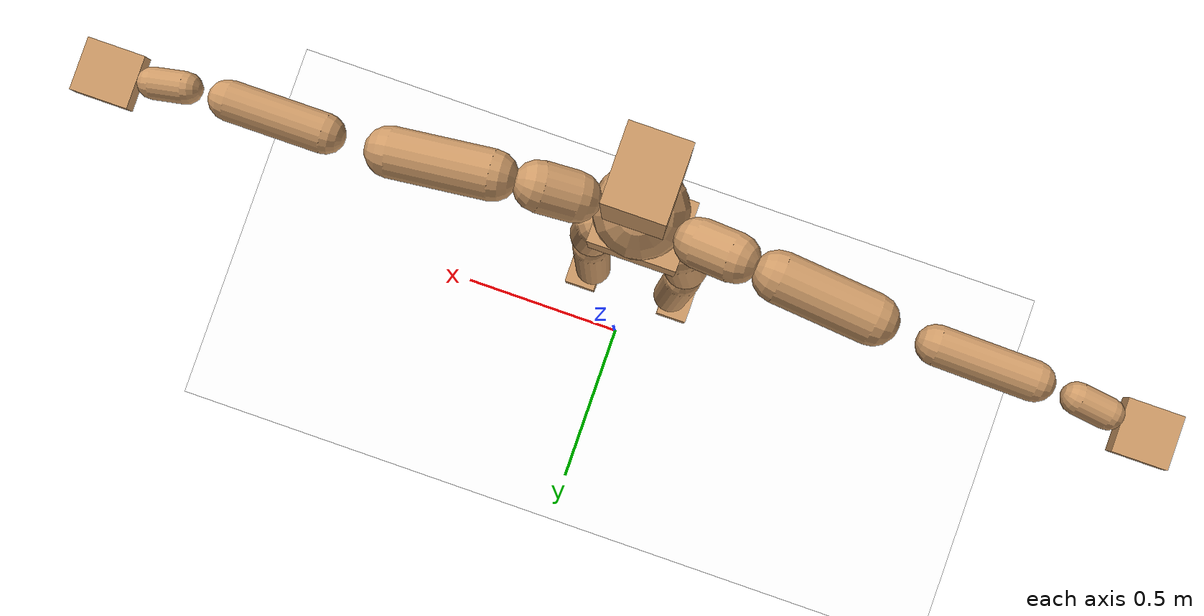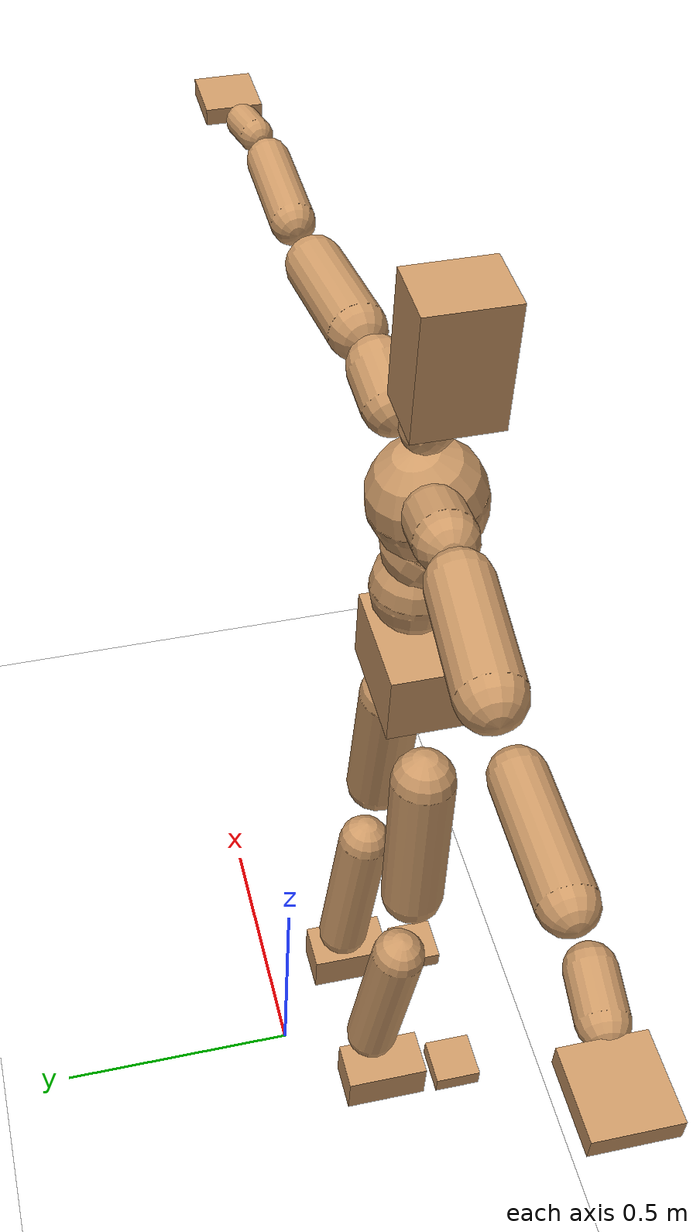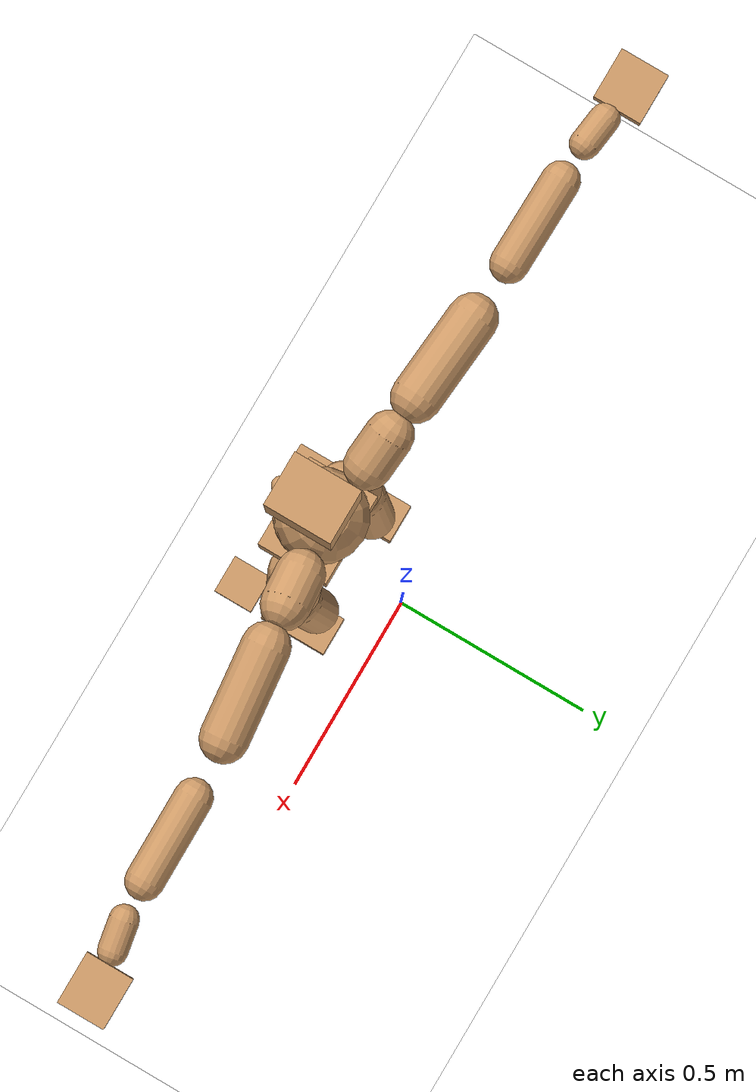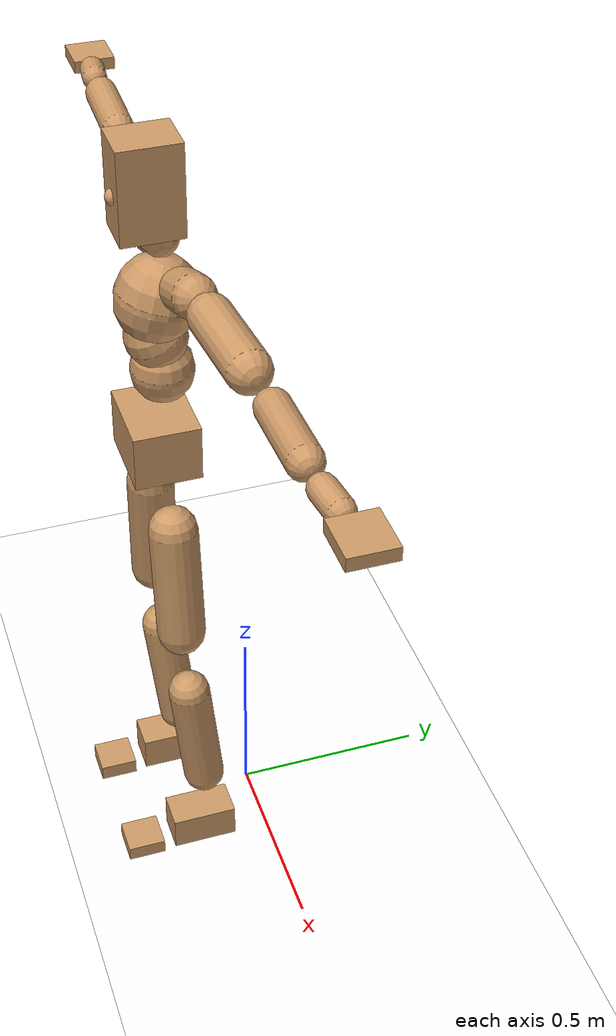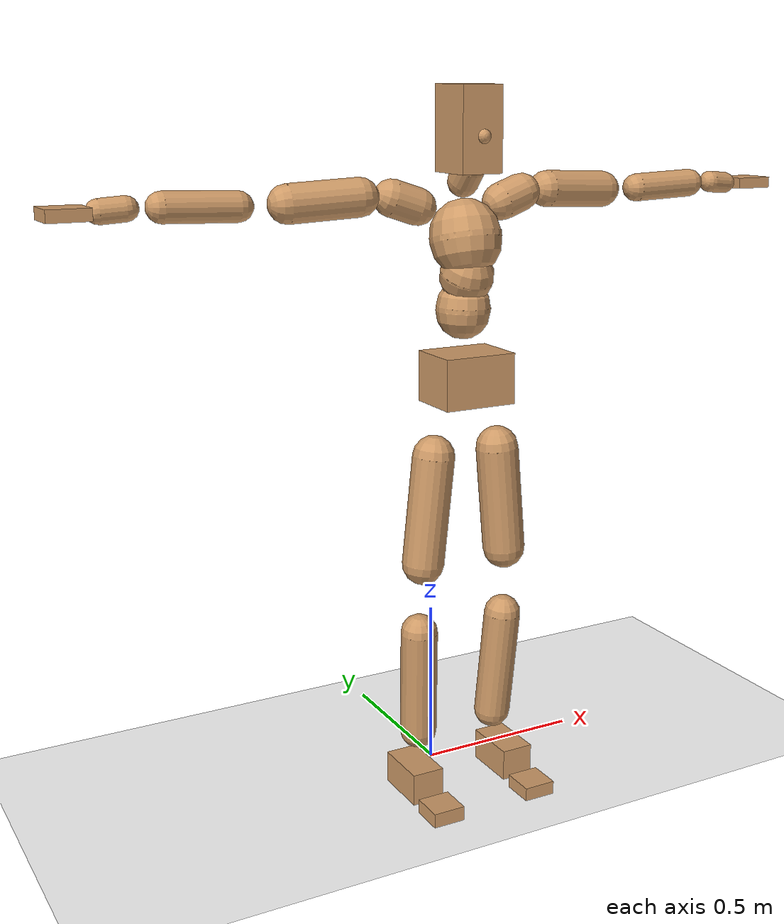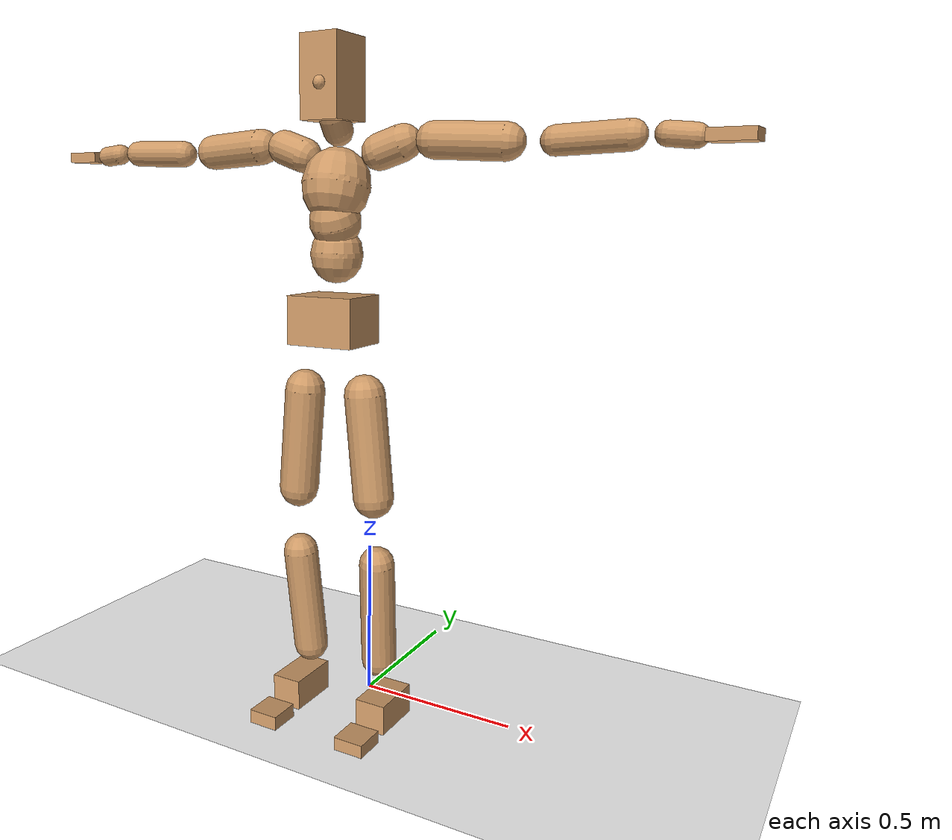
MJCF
<mujoco model="humanoid">
  <option integrator="implicitfast" />

  <visual>
    <global offwidth="1280" offheight="960" />
    <headlight active="1" ambient="0.34 0.34 0.34" diffuse="0.5 0.5 0.5" />
  </visual>

  <default>
    <joint damping="2" stiffness="2" armature="0.01" limited="true" solimplimit="0 .99 .01" />
    <geom condim="1" friction="0.7 0.005 0.0001" solimp=".99 .99 .003" solref="0.015 1" margin="0.001" rgba="0.8 0.6 .4 1" />
    <default class="smplcontact">
      <geom condim="3" friction="1. 0.005 0.0001" solref="0.015 1" solimp="0.98 0.98 0.001" priority="1" />
    </default>
    <default class="stiff_medium">
      <joint stiffness="10" />
    </default>
    <default class="stiff_medium_higher">
      <joint stiffness="50" />
    </default>
    <default class="stiff_high">
      <joint stiffness="100" />
    </default>
  </default>

  <asset>
    <texture type="skybox" builtin="gradient" rgb1="0.99 0.99 0.99" rgb2="0.608 0.828 0.892" width="100" />
    <texture builtin="flat" height="1278" mark="cross" markrgb="1 1 1" name="texgeom" random="0.01" rgb1="0.8 0.6 0.4" rgb2="0.8 0.6 0.4" type="cube" width="127" />
    <texture name="texplane" type="2d" builtin="checker" markrgb="1 1 1" rgb1="0.756 0.772 0.76" rgb2="0.6 0.6 0.6" width="100" height="100" />
    <material name="MatPlane" reflectance="0.5" texture="texplane" texrepeat="1 1" texuniform="true" />
    <material name="geom" texture="texgeom" texuniform="true" />
  </asset>

  <worldbody>
    <light name="tracking_light" pos="0 0 7" dir="0 0 -1" directional="true" cutoff="100" exponent="1" diffuse="1 1 1" specular="0.1 0.1 0.1" mode="trackcom" />
    <camera name="back" pos="0 3 2.4" xyaxes="-1 0 0 0 -1 2" mode="trackcom" />
    <camera name="side" pos="-3 0 2.4" xyaxes="0 -1 0 1 0 2" mode="trackcom" />
    <camera name="front_side" pos="-2.8 -2.8 0.8" xyaxes="0.5 -0.5 0 0.1 0.1 1" mode="trackcom" />
    <geom condim="3" name="floor" pos="0 0 0" rgba="1 1 1 1" size="100 100 .2" type="plane" material="MatPlane" />
    <body name="Pelvis" pos="-0.0018 -0.2233 1.27986" euler="90 0 0">
      <site name="Pelvis" size="0.01" />
      <freejoint name="Pelvis" />
      <geom type="box" pos="-0.0000 -0.0121 -0.0055" size="0.1069 0.0722 0.083" quat="1.0000 0.0000 0.0000 0.0000" density="3165.830099" name="Pelvis" />
      <body name="L_Hip" pos="0.0955625 -0.125675 -0.00935">
        <joint name="L_Hip_x" type="hinge" pos="0 0 0" axis="1 0 0" stiffness="17.19824030612245" range="-160.0 22.92" class="stiff_medium" damping="29.629361290924336" armature="0.022687051049198843"/>
        <joint name="L_Hip_y" type="hinge" pos="0 0 0" axis="0 1 0" stiffness="17.095561632653062" range="-70.0 70.0" class="stiff_medium" damping="16.759236135916314" armature="0.016429527259457143"/>
        <joint name="L_Hip_z" type="hinge" pos="0 0 0" axis="0 0 1" stiffness="17.10435142857143" range="-28.65 90.0" class="stiff_medium" damping="19.70284147196181" armature="0.022696093663089646"/>
        <geom type="capsule" density="2040.816327" fromto="0.0094875 -0.103125 -0.0012375 0.037675 -0.412775 -0.00495" size="0.0615" name="L_Hip" />
        <body name="L_Knee" pos="0.0471625 -0.5159 -0.0061875">
          <joint name="L_Knee_x" type="hinge" pos="0 0 0" axis="1 0 0" range="-5.16 171.89" damping="15.062760794577" armature="0.021343797365827893" stiffness="3.321907163265306"/>
          <joint name="L_Knee_y" type="hinge" pos="0 0 0" axis="0 1 0" range="-4.58 6.88" damping="12.945965232871579" armature="0.015441578364462116" stiffness="3.3917763265306125"/>
          <joint name="L_Knee_z" type="hinge" pos="0 0 0" axis="0 0 1" range="-6.88 4.58" damping="15.006918060065544" armature="0.02138423024615954" stiffness="3.2910874489795923"/>
          <geom type="capsule" density="1234.567901" fromto="-0.0037125 -0.10945 -0.0119625 -0.0149875 -0.4378 -0.048125" size="0.0541" name="L_Knee" />
          <body name="L_Ankle" pos="-0.0187 -0.54725 -0.0600875">
            <joint name="L_Ankle_x" type="hinge" pos="0 0 0" axis="1 0 0" range="-45.84 45.84" class="stiff_medium" damping="8.859849432432517" armature="0.015857944517404413" stiffness="13.750018673469388"/>
            <joint name="L_Ankle_y" type="hinge" pos="0 0 0" axis="0 1 0" range="-74.48 22.92" class="stiff_medium" damping="4.399379468505369" armature="0.015640018623433526" stiffness="13.750011836734695"/>
            <joint name="L_Ankle_z" type="hinge" pos="0 0 0" axis="0 0 1" range="-4.58 4.58" class="stiff_medium" damping="8.387836414113961" armature="0.014213292870694172" stiffness="13.75"/>
            <geom type="box" pos="0.0320375 -0.0328625 0.033275" size="0.0483 0.0464 0.085" quat="1.0000 0.0000 0.0000 0.0000" density="449.071558" name="L_Ankle" class="smplcontact" />
            <body name="L_Toe" pos="0.0363 -0.076725 0.164038">
              <joint name="L_Toe_x" type="hinge" pos="0 0 0" axis="1 0 0" range="-91.67 22.92" armature="0.013386048586154416" damping="2.713360779989445" stiffness="2.75"/>
              <joint name="L_Toe_y" type="hinge" pos="0 0 0" axis="0 1 0" range="-4.58 4.58" armature="0.01238574458658927" damping="2.610011402776643" stiffness="2.75"/>
              <joint name="L_Toe_z" type="hinge" pos="0 0 0" axis="0 0 1" range="-4.58 4.58" armature="0.010363183740586208" damping="2.387415141386687" stiffness="2.75"/>
              <geom type="box" pos="-0.004125 0.0075625 0.0341" size="0.0478 0.02 0.0496" quat="1.0000 0.0000 0.0000 0.0000" density="423.206892" name="L_Toe" class="smplcontact" />
            </body>
          </body>
        </body>
      </body>
      <body name="R_Hip" pos="-0.0930875 -0.124437 -0.0059125">
        <joint name="R_Hip_x" type="hinge" pos="0 0 0" axis="1 0 0" stiffness="17.19824030612245" range="-160.0 22.92" class="stiff_medium" damping="29.629361290924336" armature="0.022687051049198843"/>
        <joint name="R_Hip_y" type="hinge" pos="0 0 0" axis="0 1 0" stiffness="17.095561632653062" range="-70.0 70.0" class="stiff_medium" damping="16.759236135916314" armature="0.016429527259457143"/>
        <joint name="R_Hip_z" type="hinge" pos="0 0 0" axis="0 0 1" stiffness="17.10435142857143" range="-90.0 28.65" class="stiff_medium" damping="19.70284147196181" armature="0.022696093663089646"/>
        <geom type="capsule" density="2040.816327" fromto="-0.0105875 -0.105188 -0.002475 -0.042075 -0.420887 -0.0097625" size="0.0606" name="R_Hip" />
        <body name="R_Knee" pos="-0.0526625 -0.526075 -0.0122375">
          <joint name="R_Knee_x" type="hinge" pos="0 0 0" axis="1 0 0" range="-5.16 171.89" damping="15.062760794577" armature="0.021343797365827893" stiffness="3.321907163265306"/>
          <joint name="R_Knee_y" type="hinge" pos="0 0 0" axis="0 1 0" range="-6.88 4.58" damping="12.945965232871579" armature="0.015441578364462116" stiffness="3.3917763265306125"/>
          <joint name="R_Knee_z" type="hinge" pos="0 0 0" axis="0 0 1" range="-4.58 6.88" damping="15.006918060065544" armature="0.02138423024615954" stiffness="3.2910874489795923"/>
          <geom type="capsule" density="1234.567901" fromto="0.0044 -0.109587 -0.0116875 0.017325 -0.438213 -0.046475" size="0.0541" name="R_Knee" />
          <body name="R_Ankle" pos="0.021725 -0.5478 -0.0581625">
            <joint name="R_Ankle_x" type="hinge" pos="0 0 0" axis="1 0 0" range="-45.84 45.84" class="stiff_medium" damping="8.859849432432517" armature="0.015857944517404413" stiffness="13.750018673469388"/>
            <joint name="R_Ankle_y" type="hinge" pos="0 0 0" axis="0 1 0" range="-22.92 74.48" class="stiff_medium" damping="4.399379468505369" armature="0.015640018623433526" stiffness="13.750011836734695"/>
            <joint name="R_Ankle_z" type="hinge" pos="0 0 0" axis="0 0 1" range="-4.58 4.58" class="stiff_medium" damping="8.387836414113961" armature="0.014213292870694172" stiffness="13.75"/>
            <geom type="box" pos="-0.02915 -0.023925 0.0352" size="0.0483 0.0478 0.0865" quat="1.0000 0.0000 0.0000 0.0000" density="434.700981" name="R_Ankle" class="smplcontact" />
            <body name="R_Toe" pos="-0.034925 -0.0661375 0.169538">
              <joint name="R_Toe_x" type="hinge" pos="0 0 0" axis="1 0 0" range="-91.67 22.92" armature="0.013386048586154416" damping="2.713360779989445" stiffness="2.75"/>
              <joint name="R_Toe_y" type="hinge" pos="0 0 0" axis="0 1 0" range="-4.58 4.58" armature="0.01238574458658927" damping="2.610011402776643" stiffness="2.75"/>
              <joint name="R_Toe_z" type="hinge" pos="0 0 0" axis="0 0 1" range="-4.58 4.58" armature="0.010363183740586208" damping="2.387415141386687" stiffness="2.75"/>
              <geom type="box" pos="0.005775 0.0061875 0.0312125" size="0.0479 0.0216 0.0493" quat="1.0000 0.0000 0.0000 0.0000" density="407.384095" name="R_Toe" class="smplcontact" />
            </body>
          </body>
        </body>
      </body>
      <body name="Torso" pos="-0.0025 0.109 -0.0267">
        <joint name="Torso_x" type="hinge" pos="0 0 0" axis="1 0 0" range="-25.78 57.3" class="stiff_medium" damping="16.944789177371323" armature="0.011576079564418829" stiffness="11.023723673469387"/>
        <joint name="Torso_y" type="hinge" pos="0 0 0" axis="0 1 0" range="-57.3 57.3" class="stiff_high" damping="29.11508756713538" armature="0.01937626790595332" stiffness="109.37198124999998"/>
        <joint name="Torso_z" type="hinge" pos="0 0 0" axis="0 0 1" range="-34.38 34.38" class="stiff_high" damping="24.640771515328712" armature="0.014228244849331769" stiffness="106.68350652173912"/>
        <geom type="capsule" density="2040.816327" fromto="0.0025 0.0608 0.0005 0.003 0.0743 0.0006" size="0.0769" name="Torso" />
        <body name="Spine" pos="0.0055 0.1352 0.0011">
          <joint name="Spine_x" type="hinge" pos="0 0 0" axis="1 0 0" stiffness="11.23382224489796" range="-25.78 57.3" class="stiff_medium" damping="17.41106230963078" armature="0.011993349058515354"/>
          <joint name="Spine_y" type="hinge" pos="0 0 0" axis="0 1 0" stiffness="11.67224088888889" range="-57.3 57.3" class="stiff_high" damping="12.051053820080998" armature="0.01944087626855341"/>
          <joint name="Spine_z" type="hinge" pos="0 0 0" axis="0 0 1" stiffness="22.9563125" range="-34.38 34.38" class="stiff_high" damping="16.317554444807215" armature="0.016109257231005373"/>
          <geom type="capsule" density="2040.816327" fromto="0.0007 0.0238 0.0114 0.0008 0.0291 0.014" size="0.0755" name="Spine" />
          <body name="Chest" pos="0.0015 0.0529 0.0254">
            <joint name="Chest_x" type="hinge" pos="0 0 0" axis="1 0 0" stiffness="11.776115531914895" range="-25.78 57.3" class="stiff_medium" damping="18.021102303759772" armature="0.012256829035287797"/>
            <joint name="Chest_y" type="hinge" pos="0 0 0" axis="0 1 0" stiffness="13.448267333333334" range="-57.3 57.3" class="stiff_high" damping="12.937740431789003" armature="0.019447803587290643"/>
            <joint name="Chest_z" type="hinge" pos="0 0 0" axis="0 0 1" stiffness="23.267014782608697" range="-34.38 34.38" class="stiff_high" damping="16.847528832624963" armature="0.016943348915127984"/>
            <geom type="capsule" density="2040.816327" fromto="-0.0009 0.0682 -0.0173 -0.001 0.0833 -0.0212" size="0.1002" name="Chest" />
            <body name="Neck" pos="-0.0028 0.2139 -0.0429">
              <joint name="Neck_x" type="hinge" pos="0 0 0" axis="1 0 0" range="-28.65 57.3" class="stiff_medium_higher" damping="10.000000000000004" armature="0.010000000000000009" stiffness="50.0"/>
              <joint name="Neck_y" type="hinge" pos="0 0 0" axis="0 1 0" range="-40.11 40.11" class="stiff_medium_higher" damping="10.0" armature="0.01" stiffness="50.0"/>
              <joint name="Neck_z" type="hinge" pos="0 0 0" axis="0 0 1" range="-40.11 40.11" class="stiff_medium_higher" damping="10.000000000000004" armature="0.010000000000000009" stiffness="50.0"/>
              <geom type="capsule" density="1000" fromto="0.001 0.013 0.0103 0.0041 0.052 0.0411" size="0.0436" name="Neck" />
              <body name="Head" pos="0.0052 0.065 0.0513">
                <joint name="Head_x" type="hinge" pos="0 0 0" axis="1 0 0" range="-28.65 57.3" class="stiff_medium_higher" damping="1.9999999999999991" armature="0.009999999999999992" stiffness="50.0"/>
                <joint name="Head_y" type="hinge" pos="0 0 0" axis="0 1 0" range="-40.11 40.11" class="stiff_medium_higher" damping="1.9999999999999998" armature="0.009999999999999998" stiffness="50.0"/>
                <joint name="Head_z" type="hinge" pos="0 0 0" axis="0 0 1" range="-40.11 40.11" class="stiff_medium_higher" damping="1.999999999999998" armature="0.009999999999999981" stiffness="50.0"/>
                <geom type="box" pos="-0.0042 0.0876 -0.0116" size="0.0606 0.1154 0.076" quat="1.0000 0.0000 0.0000 0.0000" density="1018.069894" name="Head" />
                <geom type="capsule" name="nose" size="0.02 0.01" pos="0 0.07 0.05" quat="1 0 0 0" mass="0" contype="0" conaffinity="0" />
              </body>
            </body>
            <body name="L_Thorax" pos="0.10244 0.15821 -0.04433">
              <joint name="L_Thorax_x" type="hinge" pos="0 0 0" axis="1 0 0" range="-10.89 4.58" class="stiff_medium_higher" damping="31.589735797957683" armature="0.016223873504270125" stiffness="76.88603214285715"/>
              <joint name="L_Thorax_y" type="hinge" pos="0 0 0" axis="0 1 0" range="-28.65 17.19" class="stiff_medium_higher" damping="34.89989559971406" armature="0.01967496307175568" stiffness="77.38278265306123"/>
              <joint name="L_Thorax_z" type="hinge" pos="0 0 0" axis="0 0 1" range="-31.51 40.11" class="stiff_medium_higher" damping="34.901462278801546" armature="0.019678125977203677" stiffness="77.37729132653061"/>
              <geom type="capsule" density="1000" fromto="0.02366 0.00793 -0.00234 0.09464 0.03172 -0.00923" size="0.0521" name="L_Thorax" />
              <body name="L_Shoulder" pos="0.1183 0.03965 -0.01157">
                <joint name="L_Shoulder_x" type="hinge" pos="0 0 0" axis="1 0 0" range="-97.4 97.4" class="stiff_medium" damping="9.029989056678895" armature="0.014800063709013688" stiffness="15.304120000000001"/>
                <joint name="L_Shoulder_y" type="hinge" pos="0 0 0" axis="0 1 0" range="-108.86 80.21" class="stiff_medium" damping="10.416659800941957" armature="0.019521721968520908" stiffness="15.439610408163267"/>
                <joint name="L_Shoulder_z" type="hinge" pos="0 0 0" axis="0 0 1" range="-97.4 85.94" class="stiff_medium" damping="10.414978319288073" armature="0.019525527681653096" stiffness="15.431617857142857"/>
                <geom type="capsule" density="1000" fromto="0.06747 -0.00338 -0.00715 0.27001 -0.01326 -0.0286" size="0.0517" name="L_Shoulder" />
                <body name="L_Elbow" pos="0.33748 -0.01664 -0.03575">
                  <joint name="L_Elbow_x" type="hinge" pos="0 0 0" axis="1 0 0" range="-17.19 4.58" damping="6.893935965131499" armature="0.012655354053031634" stiffness="3.0043475918367353"/>
                  <joint name="L_Elbow_y" type="hinge" pos="0 0 0" axis="0 1 0" range="-180.0 17.19" damping="8.400044856786575" armature="0.018780901424265504" stiffness="3.005638632653061"/>
                  <joint name="L_Elbow_z" type="hinge" pos="0 0 0" axis="0 0 1" range="-100.84 4.58" damping="8.401427491655662" armature="0.018800821954664825" stiffness="3.003442469387755"/>
                  <geom type="capsule" density="1000" fromto="0.06474 0.00234 -0.00026 0.25922 0.00936 -0.00117" size="0.0405" name="L_Elbow" />
                  <body name="L_Wrist" pos="0.32396 0.0117 -0.00156">
                    <joint name="L_Wrist_x" type="hinge" pos="0 0 0" axis="1 0 0" range="-180.0 22.92" armature="0.0122903279417272" damping="2.5957833940278108" stiffness="2.7412171020408165"/>
                    <joint name="L_Wrist_y" type="hinge" pos="0 0 0" axis="0 1 0" range="-17.19 17.19" armature="0.01653060809261114" damping="3.021806412761196" stiffness="2.7619413469387752"/>
                    <joint name="L_Wrist_z" type="hinge" pos="0 0 0" axis="0 0 1" range="-22.92 22.92" armature="0.01676100149056547" damping="3.038183618728733" stiffness="2.7535823877551024"/>
                    <geom type="capsule" density="1000" fromto="0.02184 -0.00208 -0.0039 0.08736 -0.00845 -0.0156" size="0.0318" name="L_Wrist" class="smplcontact" />
                    <body name="L_Hand" pos="0.1092 -0.01066 -0.01937">
                      <joint name="L_Hand_x" type="hinge" pos="0 0 0" axis="1 0 0" range="-17.19 17.19" armature="0.010300606507591596" damping="2.314371487887722" stiffness="2.5999999999999996"/>
                      <joint name="L_Hand_y" type="hinge" pos="0 0 0" axis="0 1 0" range="-51.57 51.57" armature="0.013635420978089337" damping="2.6627840521917006" stiffness="2.5999999999999996"/>
                      <joint name="L_Hand_z" type="hinge" pos="0 0 0" axis="0 0 1" range="-91.67 91.67" armature="0.014524361339041524" damping="2.7482117633656964" stiffness="2.5999999999999996"/>
                      <geom type="box" pos="0.06409 0.0013 -0.00754" size="0.0585 0.0158 0.0538" quat="1.0000 0.0000 0.0000 0.0000" density="400.552564" name="L_Hand" class="smplcontact" />
                    </body>
                  </body>
                </body>
              </body>
            </body>
            <body name="R_Thorax" pos="-0.10634 0.15444 -0.05018">
              <joint name="R_Thorax_x" type="hinge" pos="0 0 0" axis="1 0 0" range="-10.89 4.58" class="stiff_medium_higher" damping="31.589735797957683" armature="0.016223873504270125" stiffness="76.88603214285715"/>
              <joint name="R_Thorax_y" type="hinge" pos="0 0 0" axis="0 1 0" range="-17.19 28.65" class="stiff_medium_higher" damping="34.89989559971406" armature="0.01967496307175568" stiffness="77.38278265306123"/>
              <joint name="R_Thorax_z" type="hinge" pos="0 0 0" axis="0 0 1" range="-40.11 31.51" class="stiff_medium_higher" damping="34.901462278801546" armature="0.019678125977203677" stiffness="77.37729132653061"/>
              <geom type="capsule" density="1000" fromto="-0.02496 0.00845 -0.00234 -0.09984 0.0338 -0.00949" size="0.0511" name="R_Thorax" />
              <body name="R_Shoulder" pos="-0.1248 0.04238 -0.01183">
                <joint name="R_Shoulder_x" type="hinge" pos="0 0 0" axis="1 0 0" range="-97.4 97.4" class="stiff_medium" damping="9.029989056678895" armature="0.014800063709013688" stiffness="15.304120000000001"/>
                <joint name="R_Shoulder_y" type="hinge" pos="0 0 0" axis="0 1 0" range="-80.21 108.86" class="stiff_medium" damping="10.416659800941957" armature="0.019521721968520908" stiffness="15.439610408163267"/>
                <joint name="R_Shoulder_z" type="hinge" pos="0 0 0" axis="0 0 1" range="-85.94 97.4" class="stiff_medium" damping="10.414978319288073" armature="0.019525527681653096" stiffness="15.431617857142857"/>
                <geom type="capsule" density="1000" fromto="-0.06591 -0.00351 -0.00559 -0.2639 -0.01391 -0.02223" size="0.0531" name="R_Shoulder" />
                <body name="R_Elbow" pos="-0.32981 -0.01729 -0.02782">
                  <joint name="R_Elbow_x" type="hinge" pos="0 0 0" axis="1 0 0" range="-17.19 4.58" damping="6.893935965131499" armature="0.012655354053031634" stiffness="3.0043475918367353"/>
                  <joint name="R_Elbow_y" type="hinge" pos="0 0 0" axis="0 1 0" range="-17.19 180.0" damping="8.400044856786575" armature="0.018780901424265504" stiffness="3.005638632653061"/>
                  <joint name="R_Elbow_z" type="hinge" pos="0 0 0" axis="0 0 1" range="-4.58 100.84" damping="8.401427491655662" armature="0.018800821954664825" stiffness="3.003442469387755"/>
                  <geom type="capsule" density="1000" fromto="-0.06643 0.00208 -0.00143 -0.26546 0.00806 -0.00572" size="0.0408" name="R_Elbow" />
                  <body name="R_Wrist" pos="-0.33189 0.01014 -0.00728">
                    <joint name="R_Wrist_x" type="hinge" pos="0 0 0" axis="1 0 0" range="-180.0 22.92" armature="0.0122903279417272" damping="2.5957833940278108" stiffness="2.7412171020408165"/>
                    <joint name="R_Wrist_y" type="hinge" pos="0 0 0" axis="0 1 0" range="-17.19 17.19" armature="0.01653060809261114" damping="3.021806412761196" stiffness="2.7619413469387752"/>
                    <joint name="R_Wrist_z" type="hinge" pos="0 0 0" axis="0 0 1" range="-22.92 22.92" armature="0.01676100149056547" damping="3.038183618728733" stiffness="2.7535823877551024"/>
                    <geom type="capsule" density="1000" fromto="-0.02197 -0.00156 -0.00273 -0.08801 -0.00637 -0.01079" size="0.0326" name="R_Wrist" class="smplcontact" />
                    <body name="R_Hand" pos="-0.10998 -0.00793 -0.01339">
                      <joint name="R_Hand_x" type="hinge" pos="0 0 0" axis="1 0 0" range="-17.19 17.19" armature="0.010300606507591596" damping="2.314371487887722" stiffness="2.5999999999999996"/>
                      <joint name="R_Hand_y" type="hinge" pos="0 0 0" axis="0 1 0" range="-51.57 51.57" armature="0.013635420978089337" damping="2.6627840521917006" stiffness="2.5999999999999996"/>
                      <joint name="R_Hand_z" type="hinge" pos="0 0 0" axis="0 0 1" range="-91.67 91.67" armature="0.014524361339041524" damping="2.7482117633656964" stiffness="2.5999999999999996"/>
                      <geom type="box" pos="-0.06006 -0.00117 -0.01027" size="0.0569 0.0164 0.0546" quat="1.0000 0.0000 0.0000 0.0000" density="403.679611" name="R_Hand" class="smplcontact" />
                    </body>
                  </body>
                </body>
              </body>
            </body>
          </body>
        </body>
      </body>
    </body>
  </worldbody>
  <actuator>
    <general name="L_Hip_x" joint="L_Hip_x" biastype="affine" gainprm="494.15714895193184" biasprm="-370.3206974542467 -309.5683255102041 -3.950581505456578" ctrllimited="true" ctrlrange="-1 1" forcerange="-619.1366510204082 619.1366510204082" />
    <general name="L_Hip_y" joint="L_Hip_y" biastype="affine" gainprm="375.9510358389407" biasprm="0.0 -307.72010938775514 -3.3518472271832627" ctrllimited="true" ctrlrange="-1 1" forcerange="-615.4402187755103 615.4402187755103" />
    <general name="L_Hip_z" joint="L_Hip_z" biastype="affine" gainprm="318.78232268102033" biasprm="164.83182045074247 -307.8783257142857 -3.9405682943923623" ctrllimited="true" ctrlrange="-1 1" forcerange="-615.7566514285714 615.7566514285714" />
    <general name="L_Knee_x" joint="L_Knee_x" biastype="affine" gainprm="461.92695293520586" biasprm="435.00186875395013 -298.9716446938775 -3.76569019864425" ctrllimited="true" ctrlrange="-1 1" forcerange="-597.943289387755 597.943289387755" />
    <general name="L_Knee_y" joint="L_Knee_y" biastype="affine" gainprm="30.528235525488515" biasprm="6.1269582642778 -305.25986938775515 -3.2364913082178948" ctrllimited="true" ctrlrange="-1 1" forcerange="-610.5197387755103 610.5197387755103" />
    <general name="L_Knee_z" joint="L_Knee_z" biastype="affine" gainprm="29.621968875582738" biasprm="-5.945072287420619 -296.1978704081633 -3.751729515016386" ctrllimited="true" ctrlrange="-1 1" forcerange="-592.3957408163266 592.3957408163266" />
    <general name="L_Ankle_x" joint="L_Ankle_x" biastype="affine" gainprm="99.00742693676564" biasprm="0.0 -123.7501680612245 -2.9532831441441725" ctrllimited="true" ctrlrange="-1 1" forcerange="-247.500336122449 247.500336122449" />
    <general name="L_Ankle_y" joint="L_Ankle_y" biastype="affine" gainprm="105.18453958139726" biasprm="-55.680850727072304 -123.75010653061226 -2.932919645670246" ctrllimited="true" ctrlrange="-1 1" forcerange="-247.5002130612245 247.5002130612245" />
    <general name="L_Ankle_z" joint="L_Ankle_z" biastype="affine" gainprm="9.89208986799086" biasprm="0.0 -123.75 -2.7959454713713203" ctrllimited="true" ctrlrange="-1 1" forcerange="-247.5 247.5" />
    <general name="L_Toe_x" joint="L_Toe_x" biastype="affine" gainprm="98.99865309808496" biasprm="-59.39573610693202 -99.0 -1.085344311995778" ctrllimited="true" ctrlrange="-1 1" forcerange="-198.0 198.0" />
    <general name="L_Toe_y" joint="L_Toe_y" biastype="affine" gainprm="7.913671894392689" biasprm="0.0 -99.0 -1.0440045611106572" ctrllimited="true" ctrlrange="-1 1" forcerange="-198.0 198.0" />
    <general name="L_Toe_z" joint="L_Toe_z" biastype="affine" gainprm="7.913671894392689" biasprm="0.0 -99.0 -0.9549660565546749" ctrllimited="true" ctrlrange="-1 1" forcerange="-198.0 198.0" />
    <general name="R_Hip_x" joint="R_Hip_x" biastype="affine" gainprm="494.15714895193184" biasprm="-370.3206974542467 -309.5683255102041 -3.950581505456578" ctrllimited="true" ctrlrange="-1 1" forcerange="-619.1366510204082 619.1366510204082" />
    <general name="R_Hip_y" joint="R_Hip_y" biastype="affine" gainprm="375.9510358389407" biasprm="0.0 -307.72010938775514 -3.3518472271832627" ctrllimited="true" ctrlrange="-1 1" forcerange="-615.4402187755103 615.4402187755103" />
    <general name="R_Hip_z" joint="R_Hip_z" biastype="affine" gainprm="318.78232268102033" biasprm="-164.83182045074247 -307.8783257142857 -3.9405682943923623" ctrllimited="true" ctrlrange="-1 1" forcerange="-615.7566514285714 615.7566514285714" />
    <general name="R_Knee_x" joint="R_Knee_x" biastype="affine" gainprm="461.92695293520586" biasprm="435.00186875395013 -298.9716446938775 -3.76569019864425" ctrllimited="true" ctrlrange="-1 1" forcerange="-597.943289387755 597.943289387755" />
    <general name="R_Knee_y" joint="R_Knee_y" biastype="affine" gainprm="30.528235525488515" biasprm="-6.1269582642778 -305.25986938775515 -3.2364913082178948" ctrllimited="true" ctrlrange="-1 1" forcerange="-610.5197387755103 610.5197387755103" />
    <general name="R_Knee_z" joint="R_Knee_z" biastype="affine" gainprm="29.621968875582738" biasprm="5.945072287420619 -296.1978704081633 -3.751729515016386" ctrllimited="true" ctrlrange="-1 1" forcerange="-592.3957408163266 592.3957408163266" />
    <general name="R_Ankle_x" joint="R_Ankle_x" biastype="affine" gainprm="99.00742693676564" biasprm="0.0 -123.7501680612245 -2.9532831441441725" ctrllimited="true" ctrlrange="-1 1" forcerange="-247.500336122449 247.500336122449" />
    <general name="R_Ankle_y" joint="R_Ankle_y" biastype="affine" gainprm="105.18453958139726" biasprm="55.680850727072304 -123.75010653061226 -2.932919645670246" ctrllimited="true" ctrlrange="-1 1" forcerange="-247.5002130612245 247.5002130612245" />
    <general name="R_Ankle_z" joint="R_Ankle_z" biastype="affine" gainprm="9.89208986799086" biasprm="0.0 -123.75 -2.7959454713713203" ctrllimited="true" ctrlrange="-1 1" forcerange="-247.5 247.5" />
    <general name="R_Toe_x" joint="R_Toe_x" biastype="affine" gainprm="98.99865309808496" biasprm="-59.39573610693202 -99.0 -1.085344311995778" ctrllimited="true" ctrlrange="-1 1" forcerange="-198.0 198.0" />
    <general name="R_Toe_y" joint="R_Toe_y" biastype="affine" gainprm="7.913671894392689" biasprm="0.0 -99.0 -1.0440045611106572" ctrllimited="true" ctrlrange="-1 1" forcerange="-198.0 198.0" />
    <general name="R_Toe_z" joint="R_Toe_z" biastype="affine" gainprm="7.913671894392689" biasprm="0.0 -99.0 -0.9549660565546749" ctrllimited="true" ctrlrange="-1 1" forcerange="-198.0 198.0" />
    <general name="Torso_x" joint="Torso_x" biastype="affine" gainprm="191.81537709933156" biasprm="72.77347961207185 -264.5693681632653 -4.51861044729902" ctrllimited="true" ctrlrange="-1 1" forcerange="-396.85405224489796 396.85405224489796" />
    <general name="Torso_y" joint="Torso_y" biastype="affine" gainprm="262.51209058192023" biasprm="0.0 -262.492755 -5.823017513427076" ctrllimited="true" ctrlrange="-1 1" forcerange="-393.7391324999999 393.7391324999999" />
    <general name="Torso_z" joint="Torso_z" biastype="affine" gainprm="153.63556556747483" biasprm="0.0 -256.0404156521739 -4.928154303065742" ctrllimited="true" ctrlrange="-1 1" forcerange="-384.0606234782608 384.0606234782608" />
    <general name="Spine_x" joint="Spine_x" biastype="affine" gainprm="195.47114151254812" biasprm="74.16045234082229 -269.61173387755105 -4.6429499492348745" ctrllimited="true" ctrlrange="-1 1" forcerange="-404.41760081632657 404.41760081632657" />
    <general name="Spine_y" joint="Spine_y" biastype="affine" gainprm="280.1544163778229" biasprm="0.0 -280.13378133333333 -6.025526910040499" ctrllimited="true" ctrlrange="-1 1" forcerange="-420.200672 420.200672" />
    <general name="Spine_z" joint="Spine_z" biastype="affine" gainprm="165.29762515644848" biasprm="0.0 -275.47575 -5.4391848149357385" ctrllimited="true" ctrlrange="-1 1" forcerange="-413.213625 413.213625" />
    <general name="Chest_x" joint="Chest_x" biastype="affine" gainprm="204.90717188021173" biasprm="77.74041956745634 -282.62677276595747 -4.8056272810026055" ctrllimited="true" ctrlrange="-1 1" forcerange="-423.94015914893623 423.94015914893623" />
    <general name="Chest_y" joint="Chest_y" biastype="affine" gainprm="322.78219083444463" biasprm="0.0 -322.758416 -6.468870215894501" ctrllimited="true" ctrlrange="-1 1" forcerange="-484.1376240000001 484.1376240000001" />
    <general name="Chest_z" joint="Chest_z" biastype="affine" gainprm="167.53484637592376" biasprm="0.0 -279.20417739130437 -5.615842944208321" ctrllimited="true" ctrlrange="-1 1" forcerange="-418.8062660869566 418.8062660869566" />
    <general name="Neck_x" joint="Neck_x" biastype="affine" gainprm="27.00198885760427" biasprm="9.000662952534757 -36.0 -0.8000000000000004" ctrllimited="true" ctrlrange="-1 1" forcerange="-72.0 72.0" />
    <general name="Neck_y" joint="Neck_y" biastype="affine" gainprm="25.20185626709732" biasprm="0.0 -36.0 -0.8" ctrllimited="true" ctrlrange="-1 1" forcerange="-72.0 72.0" />
    <general name="Neck_z" joint="Neck_z" biastype="affine" gainprm="25.20185626709732" biasprm="0.0 -36.0 -0.8000000000000004" ctrllimited="true" ctrlrange="-1 1" forcerange="-72.0 72.0" />
    <general name="Head_x" joint="Head_x" biastype="affine" gainprm="18.001325905069514" biasprm="6.000441968356505 -24.0 -0.7999999999999997" ctrllimited="true" ctrlrange="-1 1" forcerange="-48.0 48.0" />
    <general name="Head_y" joint="Head_y" biastype="affine" gainprm="16.801237511398213" biasprm="0.0 -24.0 -0.7999999999999999" ctrllimited="true" ctrlrange="-1 1" forcerange="-48.0 48.0" />
    <general name="Head_z" joint="Head_z" biastype="affine" gainprm="16.801237511398213" biasprm="0.0 -24.0 -0.7999999999999993" ctrllimited="true" ctrlrange="-1 1" forcerange="-48.0 48.0" />
    <general name="L_Thorax_x" joint="L_Thorax_x" biastype="affine" gainprm="24.911299101430362" biasprm="-10.160975910150333 -184.52647714285715 -2.527178863836615" ctrllimited="true" ctrlrange="-1 1" forcerange="-369.0529542857143 369.0529542857143" />
    <general name="L_Thorax_y" joint="L_Thorax_y" biastype="affine" gainprm="74.29294346554212" biasprm="-18.57323586638553 -185.71867836734694 -2.7919916479771247" ctrllimited="true" ctrlrange="-1 1" forcerange="-371.4373567346939 371.4373567346939" />
    <general name="L_Thorax_z" joint="L_Thorax_z" biastype="affine" gainprm="116.06638363736599" biasprm="13.937041319203399 -185.70549918367348 -2.792116982304124" ctrllimited="true" ctrlrange="-1 1" forcerange="-371.41099836734696 371.41099836734696" />
    <general name="L_Shoulder_x" joint="L_Shoulder_x" biastype="affine" gainprm="124.8779970044095" biasprm="0.0 -73.459776 -2.4079970817810388" ctrllimited="true" ctrlrange="-1 1" forcerange="-146.919552 146.919552" />
    <general name="L_Shoulder_y" joint="L_Shoulder_y" biastype="affine" gainprm="122.27778721627745" biasprm="-18.528897253643354 -74.11012995918368 -2.777775946917856" ctrllimited="true" ctrlrange="-1 1" forcerange="-148.22025991836736 148.22025991836736" />
    <general name="L_Shoulder_z" joint="L_Shoulder_z" biastype="affine" gainprm="118.51062714799397" biasprm="-7.40772219437119 -74.0717657142857 -2.777327551810153" ctrllimited="true" ctrlrange="-1 1" forcerange="-148.1435314285714 148.1435314285714" />
    <general name="L_Elbow_x" joint="L_Elbow_x" biastype="affine" gainprm="20.54747587592092" biasprm="-11.901868203737386 -108.15651330612246 -1.10302975442104" ctrllimited="true" ctrlrange="-1 1" forcerange="-216.31302661224493 216.31302661224493" />
    <general name="L_Elbow_y" joint="L_Elbow_y" biastype="affine" gainprm="186.19650463217005" biasprm="-153.73321628461693 -108.20299077551019 -1.3440071770858522" ctrllimited="true" ctrlrange="-1 1" forcerange="-216.40598155102037 216.40598155102037" />
    <general name="L_Elbow_z" joint="L_Elbow_z" biastype="affine" gainprm="99.4700192692226" biasprm="-90.82701626688834 -108.12392889795919 -1.344228398664906" ctrllimited="true" ctrlrange="-1 1" forcerange="-216.24785779591838 216.24785779591838" />
    <general name="L_Wrist_x" joint="L_Wrist_x" biastype="affine" gainprm="29.125065357690858" biasprm="-22.545659700305933 -16.447302612244897 -1.0383133576111243" ctrllimited="true" ctrlrange="-1 1" forcerange="-32.894605224489794 32.894605224489794" />
    <general name="L_Wrist_y" joint="L_Wrist_y" biastype="affine" gainprm="4.971860631693158" biasprm="0.0 -16.571648081632652 -1.2087225651044786" ctrllimited="true" ctrlrange="-1 1" forcerange="-33.143296163265305 33.143296163265305" />
    <general name="L_Wrist_z" joint="L_Wrist_z" biastype="affine" gainprm="6.609084529125214" biasprm="0.0 -16.521494326530615 -1.2152734474914935" ctrllimited="true" ctrlrange="-1 1" forcerange="-33.04298865306123 33.04298865306123" />
    <general name="L_Hand_x" joint="L_Hand_x" biastype="affine" gainprm="4.680344735318074" biasprm="0.0 -15.599999999999998 -0.9257485951550889" ctrllimited="true" ctrlrange="-1 1" forcerange="-31.199999999999996 31.199999999999996" />
    <general name="L_Hand_y" joint="L_Hand_y" biastype="affine" gainprm="14.041034205954219" biasprm="0.0 -15.599999999999998 -1.0651136208766803" ctrllimited="true" ctrlrange="-1 1" forcerange="-31.199999999999996 31.199999999999996" />
    <general name="L_Hand_z" joint="L_Hand_z" biastype="affine" gainprm="24.959115874729946" biasprm="0.0 -15.599999999999998 -1.0992847053462786" ctrllimited="true" ctrlrange="-1 1" forcerange="-31.199999999999996 31.199999999999996" />
    <general name="R_Thorax_x" joint="R_Thorax_x" biastype="affine" gainprm="24.911299101430362" biasprm="-10.160975910150333 -184.52647714285715 -2.527178863836615" ctrllimited="true" ctrlrange="-1 1" forcerange="-369.0529542857143 369.0529542857143" />
    <general name="R_Thorax_y" joint="R_Thorax_y" biastype="affine" gainprm="74.29294346554212" biasprm="18.57323586638552 -185.71867836734694 -2.7919916479771247" ctrllimited="true" ctrlrange="-1 1" forcerange="-371.4373567346939 371.4373567346939" />
    <general name="R_Thorax_z" joint="R_Thorax_z" biastype="affine" gainprm="116.06638363736599" biasprm="-13.937041319203399 -185.70549918367348 -2.792116982304124" ctrllimited="true" ctrlrange="-1 1" forcerange="-371.41099836734696 371.41099836734696" />
    <general name="R_Shoulder_x" joint="R_Shoulder_x" biastype="affine" gainprm="124.8779970044095" biasprm="0.0 -73.459776 -2.4079970817810388" ctrllimited="true" ctrlrange="-1 1" forcerange="-146.919552 146.919552" />
    <general name="R_Shoulder_y" joint="R_Shoulder_y" biastype="affine" gainprm="122.27778721627745" biasprm="18.528897253643354 -74.11012995918368 -2.777775946917856" ctrllimited="true" ctrlrange="-1 1" forcerange="-148.22025991836736 148.22025991836736" />
    <general name="R_Shoulder_z" joint="R_Shoulder_z" biastype="affine" gainprm="118.51062714799397" biasprm="7.407722194371173 -74.0717657142857 -2.777327551810153" ctrllimited="true" ctrlrange="-1 1" forcerange="-148.1435314285714 148.1435314285714" />
    <general name="R_Elbow_x" joint="R_Elbow_x" biastype="affine" gainprm="20.54747587592092" biasprm="-11.901868203737386 -108.15651330612246 -1.10302975442104" ctrllimited="true" ctrlrange="-1 1" forcerange="-216.31302661224493 216.31302661224493" />
    <general name="R_Elbow_y" joint="R_Elbow_y" biastype="affine" gainprm="186.19650463217005" biasprm="153.73321628461693 -108.20299077551019 -1.3440071770858522" ctrllimited="true" ctrlrange="-1 1" forcerange="-216.40598155102037 216.40598155102037" />
    <general name="R_Elbow_z" joint="R_Elbow_z" biastype="affine" gainprm="99.4700192692226" biasprm="90.82701626688832 -108.12392889795919 -1.344228398664906" ctrllimited="true" ctrlrange="-1 1" forcerange="-216.24785779591838 216.24785779591838" />
    <general name="R_Wrist_x" joint="R_Wrist_x" biastype="affine" gainprm="29.125065357690858" biasprm="-22.545659700305933 -16.447302612244897 -1.0383133576111243" ctrllimited="true" ctrlrange="-1 1" forcerange="-32.894605224489794 32.894605224489794" />
    <general name="R_Wrist_y" joint="R_Wrist_y" biastype="affine" gainprm="4.971860631693158" biasprm="0.0 -16.571648081632652 -1.2087225651044786" ctrllimited="true" ctrlrange="-1 1" forcerange="-33.143296163265305 33.143296163265305" />
    <general name="R_Wrist_z" joint="R_Wrist_z" biastype="affine" gainprm="6.609084529125214" biasprm="0.0 -16.521494326530615 -1.2152734474914935" ctrllimited="true" ctrlrange="-1 1" forcerange="-33.04298865306123 33.04298865306123" />
    <general name="R_Hand_x" joint="R_Hand_x" biastype="affine" gainprm="4.680344735318074" biasprm="0.0 -15.599999999999998 -0.9257485951550889" ctrllimited="true" ctrlrange="-1 1" forcerange="-31.199999999999996 31.199999999999996" />
    <general name="R_Hand_y" joint="R_Hand_y" biastype="affine" gainprm="14.041034205954219" biasprm="0.0 -15.599999999999998 -1.0651136208766803" ctrllimited="true" ctrlrange="-1 1" forcerange="-31.199999999999996 31.199999999999996" />
    <general name="R_Hand_z" joint="R_Hand_z" biastype="affine" gainprm="24.959115874729946" biasprm="0.0 -15.599999999999998 -1.0992847053462786" ctrllimited="true" ctrlrange="-1 1" forcerange="-31.199999999999996 31.199999999999996" />
  </actuator>
  <contact>
    <exclude body1="Torso" body2="Chest" />
    <exclude body1="Head" body2="Chest" />
    <exclude body1="R_Knee" body2="R_Toe" />
    <exclude body1="R_Knee" body2="L_Ankle" />
    <exclude body1="R_Knee" body2="L_Toe" />
    <exclude body1="L_Knee" body2="L_Toe" />
    <exclude body1="L_Knee" body2="R_Ankle" />
    <exclude body1="L_Knee" body2="R_Toe" />
    <exclude body1="L_Shoulder" body2="Chest" />
    <exclude body1="R_Shoulder" body2="Chest" />
  </contact>
  <sensor>
    <framelinvel name="sensor_Pelvis_framelinvel" objtype="xbody" objname="Pelvis" />
    <framelinvel name="sensor_L_Hip_framelinvel" objtype="xbody" objname="L_Hip" />
    <framelinvel name="sensor_L_Knee_framelinvel" objtype="xbody" objname="L_Knee" />
    <framelinvel name="sensor_L_Ankle_framelinvel" objtype="xbody" objname="L_Ankle" />
    <framelinvel name="sensor_L_Toe_framelinvel" objtype="xbody" objname="L_Toe" />
    <framelinvel name="sensor_R_Hip_framelinvel" objtype="xbody" objname="R_Hip" />
    <framelinvel name="sensor_R_Knee_framelinvel" objtype="xbody" objname="R_Knee" />
    <framelinvel name="sensor_R_Ankle_framelinvel" objtype="xbody" objname="R_Ankle" />
    <framelinvel name="sensor_R_Toe_framelinvel" objtype="xbody" objname="R_Toe" />
    <framelinvel name="sensor_Torso_framelinvel" objtype="xbody" objname="Torso" />
    <framelinvel name="sensor_Spine_framelinvel" objtype="xbody" objname="Spine" />
    <framelinvel name="sensor_Chest_framelinvel" objtype="xbody" objname="Chest" />
    <framelinvel name="sensor_Neck_framelinvel" objtype="xbody" objname="Neck" />
    <framelinvel name="sensor_Head_framelinvel" objtype="xbody" objname="Head" />
    <framelinvel name="sensor_L_Thorax_framelinvel" objtype="xbody" objname="L_Thorax" />
    <framelinvel name="sensor_L_Shoulder_framelinvel" objtype="xbody" objname="L_Shoulder" />
    <framelinvel name="sensor_L_Elbow_framelinvel" objtype="xbody" objname="L_Elbow" />
    <framelinvel name="sensor_L_Wrist_framelinvel" objtype="xbody" objname="L_Wrist" />
    <framelinvel name="sensor_L_Hand_framelinvel" objtype="xbody" objname="L_Hand" />
    <framelinvel name="sensor_R_Thorax_framelinvel" objtype="xbody" objname="R_Thorax" />
    <framelinvel name="sensor_R_Shoulder_framelinvel" objtype="xbody" objname="R_Shoulder" />
    <framelinvel name="sensor_R_Elbow_framelinvel" objtype="xbody" objname="R_Elbow" />
    <framelinvel name="sensor_R_Wrist_framelinvel" objtype="xbody" objname="R_Wrist" />
    <framelinvel name="sensor_R_Hand_framelinvel" objtype="xbody" objname="R_Hand" />
    <frameangvel name="sensor_Pelvis_frameangvel" objtype="xbody" objname="Pelvis" />
    <frameangvel name="sensor_L_Hip_frameangvel" objtype="xbody" objname="L_Hip" />
    <frameangvel name="sensor_L_Knee_frameangvel" objtype="xbody" objname="L_Knee" />
    <frameangvel name="sensor_L_Ankle_frameangvel" objtype="xbody" objname="L_Ankle" />
    <frameangvel name="sensor_L_Toe_frameangvel" objtype="xbody" objname="L_Toe" />
    <frameangvel name="sensor_R_Hip_frameangvel" objtype="xbody" objname="R_Hip" />
    <frameangvel name="sensor_R_Knee_frameangvel" objtype="xbody" objname="R_Knee" />
    <frameangvel name="sensor_R_Ankle_frameangvel" objtype="xbody" objname="R_Ankle" />
    <frameangvel name="sensor_R_Toe_frameangvel" objtype="xbody" objname="R_Toe" />
    <frameangvel name="sensor_Torso_frameangvel" objtype="xbody" objname="Torso" />
    <frameangvel name="sensor_Spine_frameangvel" objtype="xbody" objname="Spine" />
    <frameangvel name="sensor_Chest_frameangvel" objtype="xbody" objname="Chest" />
    <frameangvel name="sensor_Neck_frameangvel" objtype="xbody" objname="Neck" />
    <frameangvel name="sensor_Head_frameangvel" objtype="xbody" objname="Head" />
    <frameangvel name="sensor_L_Thorax_frameangvel" objtype="xbody" objname="L_Thorax" />
    <frameangvel name="sensor_L_Shoulder_frameangvel" objtype="xbody" objname="L_Shoulder" />
    <frameangvel name="sensor_L_Elbow_frameangvel" objtype="xbody" objname="L_Elbow" />
    <frameangvel name="sensor_L_Wrist_frameangvel" objtype="xbody" objname="L_Wrist" />
    <frameangvel name="sensor_L_Hand_frameangvel" objtype="xbody" objname="L_Hand" />
    <frameangvel name="sensor_R_Thorax_frameangvel" objtype="xbody" objname="R_Thorax" />
    <frameangvel name="sensor_R_Shoulder_frameangvel" objtype="xbody" objname="R_Shoulder" />
    <frameangvel name="sensor_R_Elbow_frameangvel" objtype="xbody" objname="R_Elbow" />
    <frameangvel name="sensor_R_Wrist_frameangvel" objtype="xbody" objname="R_Wrist" />
    <frameangvel name="sensor_R_Hand_frameangvel" objtype="xbody" objname="R_Hand" />
    <subtreelinvel name="Chest_subtreelinvel" body="Chest" />
    <gyro name="Pelvis_gyro" site="Pelvis" />
  </sensor>
</mujoco>
